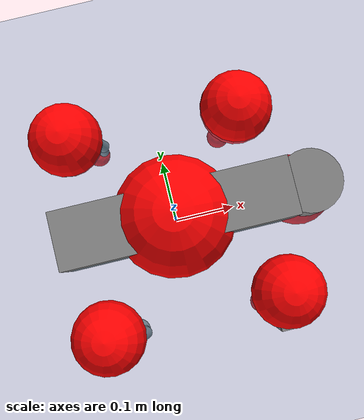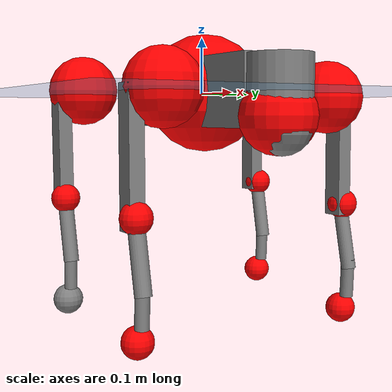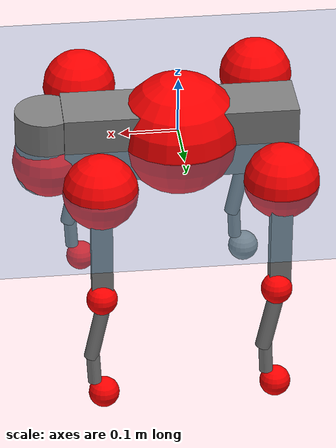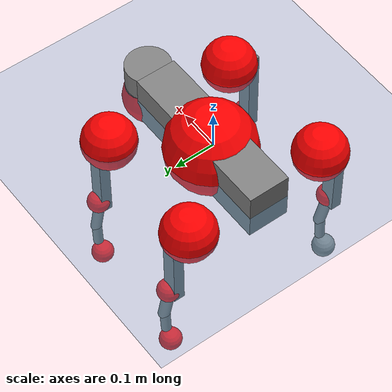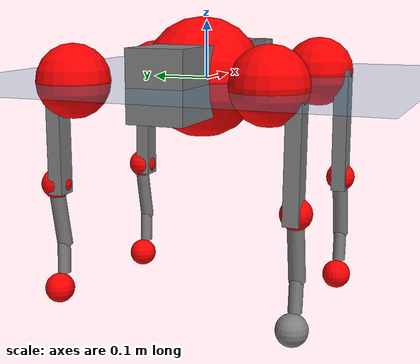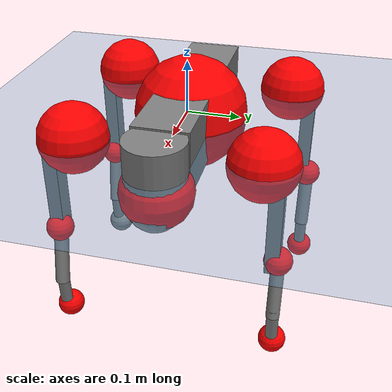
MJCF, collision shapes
<mujoco model="go2">
  <compiler angle="radian" assetdir="assets" balanceinertia="true" inertiafromgeom="false"/>

  <option timestep="0.005" density="1.2" viscosity="2e-05"/>

  <size nkey="1"/>

  <visual>
    <quality shadowsize="8192"/>
    <map shadowclip="0.5"/>
  </visual>

  <default>
    <default class="/">
      <geom contype="0" conaffinity="0" group="1" solref="-1000 -80"/>
      <site size="0.01 0.005 0.005" group="5"/>
      <general forcelimited="true" biastype="affine" gainprm="20" biasprm="0 -20 -0.5"/>
      <default class="go2">
        <joint armature="0.01" damping="0.01" frictionloss="0.2"/>
        <geom condim="1" margin="0.001"/>
        <default class="visual">
          <geom type="mesh" group="2"/>
        </default>
        <default class="collision">
          <geom group="3"/>
          <default class="foot">
            <geom size="0.022 0 0" condim="6" priority="1" friction="0.8 0.02 0.01" solimp="0.015 1 0.022"/>
          </default>
        </default>
        <default class="reward_collision_sphere">
          <geom group="5" rgba="1 0 0 1"/>
        </default>
      </default>
    </default>
  </default>

  <asset>
    <texture type="skybox" colorspace="auto" name="//unnamed_texture_0" builtin="gradient" rgb1="0.95 0.95 0.95" rgb2="0.95 0.95 0.95" width="100" height="600"/>
    <texture type="2d" colorspace="auto" name="texplane" builtin="checker" rgb1="0.345 0.575 0.748" rgb2="0.345 0.575 0.748" markrgb="1 1 1" width="512" height="512"/>
    <material name="MatPlane" class="/" texture="texplane" texuniform="true" texrepeat="2 2" specular="0.9"/>
    <material name="metal" class="/" rgba="0.9 0.95 0.95 1"/>
    <material name="black" class="/" rgba="0 0 0 1"/>
    <material name="white" class="/"/>
    <material name="gray" class="/" rgba="0.671705 0.692426 0.77427 1"/>
    <mesh name="base_0" class="/" file="base_0.obj"/>
    <mesh name="base_1" class="/" file="base_1.obj"/>
    <mesh name="base_2" class="/" file="base_2.obj"/>
    <mesh name="base_3" class="/" file="base_3.obj"/>
    <mesh name="base_4" class="/" file="base_4.obj"/>
    <mesh name="hip_0" class="/" file="hip_0.obj"/>
    <mesh name="hip_1" class="/" file="hip_1.obj"/>
    <mesh name="thigh_0" class="/" file="thigh_0.obj"/>
    <mesh name="thigh_1" class="/" file="thigh_1.obj"/>
    <mesh name="thigh_mirror_0" class="/" file="thigh_mirror_0.obj"/>
    <mesh name="thigh_mirror_1" class="/" file="thigh_mirror_1.obj"/>
    <mesh name="calf_0" class="/" file="calf_0.obj"/>
    <mesh name="calf_1" class="/" file="calf_1.obj"/>
    <mesh name="calf_mirror_0" class="/" file="calf_mirror_0.obj"/>
    <mesh name="calf_mirror_1" class="/" file="calf_mirror_1.obj"/>
    <mesh name="foot" class="/" file="foot.obj"/>
  </asset>

  <worldbody>
    <geom name="floor" class="/" size="100 100 0.125" type="plane" group="0" material="MatPlane"/>
    <light name="toplight_shadow" class="/" pos="0 0 5" dir="0.0990148 0.0990148 -0.990148" type="directional" ambient="0.04 0.04 0.04" diffuse="0.55 0.55 0.55" specular="0.12 0.12 0.12"/>
    <light name="toplight_fill" class="/" pos="0 0 5" dir="0.0990148 0.0990148 -0.990148" type="directional" castshadow="false" ambient="0.04 0.04 0.04" diffuse="0.3 0.3 0.3" specular="0.08 0.08 0.08"/>
    <body name="trunk" childclass="go2" pos="-0.000845164 0.00708967 0.00147815" quat="1 -4.84164e-05 1.5007e-05 1.54138e-05">
      <inertial pos="0.0154792 0.00780536 -0.00529259" quat="-0.00441311 0.67811 -0.0341361 0.734154" mass="8.43691" diaginertia="0.0360212 0.721823 0.0147833"/>
      <joint name="//unnamed_joint_0" type="free" armature="0" damping="0" frictionloss="0"/>
      <geom name="//unnamed_geom_1" class="visual" material="black" mesh="base_0"/>
      <geom name="//unnamed_geom_2" class="visual" material="black" mesh="base_1"/>
      <geom name="//unnamed_geom_3" class="visual" material="black" mesh="base_2"/>
      <geom name="//unnamed_geom_4" class="visual" material="white" mesh="base_3"/>
      <geom name="//unnamed_geom_5" class="visual" material="gray" mesh="base_4"/>
      <geom name="trunk_1" class="collision" size="0.199595 0.049607 0.0604834" type="box"/>
      <geom name="trunk_2" class="collision" size="0.0530556 0.04775" pos="0.226958 0 0.00903574" type="cylinder"/>
      <geom name="trunk_3" class="collision" size="0.0498723" pos="0.233328 0 -0.0542144"/>
      <geom name="//unnamed_geom_9" class="reward_collision_sphere" size="0.106111"/>
      <geom name="//unnamed_geom_10" class="reward_collision_sphere" size="0.0636667" pos="0.222976 0 -0.0406608"/>
      <site name="imu" pos="-0.0541579 -0.0221729 0.073608" size="0.0106111"/>
      <camera name="track" pos="0 -2.96684 0" quat="0.707107 0.707107 0 0" mode="trackcom"/>
      <camera name="ego_camera" pos="0.248459 0 0.0406608" quat="-0.5 -0.5 0.5 0.5"/>
      <body name="FL_hip" pos="0.148469 0.0576789 -0.00927483" quat="0.999993 0.00345691 -0.00124822 -0.000776998">
        <inertial pos="-0.00487614 0.00277076 -0.00392617" quat="0.493265 0.503336 0.507763 0.495499" mass="0.861953" diaginertia="0.000281544 0.00467974 0.000281633"/>
        <joint name="FL_hip_joint" pos="0 0 0" axis="0.999985 -0.0032634 -0.00446788" range="-1.27899 0.967433" armature="0.0100027" damping="0.0426036" frictionloss="0.1518"/>
        <geom name="//unnamed_geom_11" class="visual" material="metal" mesh="hip_0"/>
        <geom name="//unnamed_geom_12" class="visual" material="gray" mesh="hip_1"/>
        <geom name="//unnamed_geom_13" class="collision" size="0.0488112 0.0212222" pos="0 0.118674 0" quat="0.707107 0.707107 0 0" type="cylinder"/>
        <geom name="//unnamed_geom_14" class="reward_collision_sphere" size="0.0636667" pos="0 0.103839 0"/>
        <body name="FL_thigh" pos="0.00196971 0.130323 -0.000310111" quat="0.999995 9.28117e-05 0.00139615 -0.00276777">
          <inertial pos="-0.00913353 -0.0379493 -0.0287942" quat="0.828295 0.0792408 -0.0620949 0.551174" mass="1.37492" diaginertia="0.00198083 0.0427593 0.000549035"/>
          <joint name="FL_thigh_joint" pos="0 0 0" axis="-0.00273712 0.999316 0.0368697" range="-1.63818 3.29657" armature="0.00652351" damping="0.0114852" frictionloss="0.189968"/>
          <geom name="//unnamed_geom_15" class="visual" material="metal" mesh="thigh_0"/>
          <geom name="//unnamed_geom_16" class="visual" material="gray" mesh="thigh_1"/>
          <geom name="//unnamed_geom_17" class="collision" size="0.113008 0.0129986 0.0180389" pos="0 0 -0.0962306" quat="0.707107 0 0.707107 0" type="box"/>
          <body name="FL_calf" pos="0.00128043 0.00954908 -0.190458" quat="0.999998 -0.000353119 -0.00148632 -0.00129099">
            <inertial pos="-0.000426784 -0.00110851 -0.116926" quat="0.711633 0.00476477 -0.00273847 0.70253" mass="0.287726" diaginertia="0.000524321 0.00929786 3.65865e-05"/>
            <joint name="FL_calf_joint" pos="0 0 0" axis="-0.0064464 0.999968 0.00473569" stiffness="0.00090952" range="-2.51076 -0.810931" armature="0.0132876" damping="0.00576969" frictionloss="0.21306"/>
            <geom name="//unnamed_geom_18" class="visual" material="gray" mesh="calf_0"/>
            <geom name="//unnamed_geom_19" class="visual" material="black" mesh="calf_1"/>
            <geom name="FL_calf0" class="collision" size="0.0127333 0.0636667" pos="0.00637074 0 -0.0542144" quat="0.994493 0 -0.104807 0" type="cylinder"/>
            <geom name="//unnamed_geom_21" class="collision" size="0.0116722 0.0344861" pos="0.0159269 0 -0.133729" quat="0.999688 0 0.0249974 0" type="cylinder"/>
            <geom name="//unnamed_geom_22" class="visual" pos="0 0 -0.192461" quat="1 0 0 0" material="black" mesh="foot"/>
            <geom name="FL_foot" class="foot" size="0.0243431" pos="-0.00159269 0 -0.192461"/>
            <geom name="//unnamed_geom_24" class="reward_collision_sphere" size="0.0265278"/>
            <geom name="//unnamed_geom_25" class="reward_collision_sphere" size="0.0265278" pos="-0.00159269 0 -0.192461"/>
            <site name="FL_foot" class="foot" pos="-0.00159269 0 -0.192461" size="0.0106111"/>
          </body>
        </body>
      </body>
      <body name="FR_hip" pos="0.157474 -0.065461 0.0031967" quat="0.999999 0.000963856 -0.00108228 -0.000195591">
        <inertial pos="-0.00228641 -0.00293974 -0.000648282" quat="0.496725 0.511795 0.493698 0.497587" mass="0.914487" diaginertia="0.000293084 0.00500013 0.000267253"/>
        <joint name="FR_hip_joint" pos="0 0 0" axis="0.999613 -0.00774779 0.0266998" stiffness="0.0119514" range="-1.05204 1.00448" armature="0.0101471" damping="0.00313779" frictionloss="0.193042"/>
        <geom name="//unnamed_geom_26" class="visual" pos="0 5.05138e-09 2.16664e-07" quat="4.63268e-05 1 0 0" material="metal" mesh="hip_0"/>
        <geom name="//unnamed_geom_27" class="visual" pos="0 8.18889e-09 -5.35893e-07" quat="4.63268e-05 1 0 0" material="gray" mesh="hip_1"/>
        <geom name="//unnamed_geom_28" class="collision" size="0.0488112 0.0212222" pos="0 -0.118674 0" quat="0.707107 0.707107 0 0" type="cylinder"/>
        <geom name="//unnamed_geom_29" class="reward_collision_sphere" size="0.0636667" pos="0 -0.103839 0"/>
        <body name="FR_thigh" pos="-0.00965673 -0.152798 -0.0104889" quat="0.999998 -0.00104845 -0.00140362 -0.000128317">
          <inertial pos="0.000374967 0.0441778 -0.031105" quat="0.553874 0.00404316 0.083938 0.828349" mass="1.14436" diaginertia="0.00175105 0.0376389 0.000490519"/>
          <joint name="FR_thigh_joint" pos="0 0 0" axis="-0.00155529 -0.999999 9.75399e-05" stiffness="0.00973468" range="-3.29237 1.56686" armature="0.0113348" damping="0.00427164" frictionloss="0.213203"/>
          <geom name="//unnamed_geom_30" class="visual" material="metal" mesh="thigh_mirror_0"/>
          <geom name="//unnamed_geom_31" class="visual" material="gray" mesh="thigh_mirror_1"/>
          <geom name="//unnamed_geom_32" class="collision" size="0.113008 0.0129986 0.0180389" pos="0 0 -0.0962306" quat="0.707107 0 0.707107 0" type="box"/>
          <body name="FR_calf" pos="0.0099715 0.0015987 -0.187391" quat="0.999991 0.00364662 0.00187745 -0.000971056">
            <inertial pos="0.00285345 0.000752924 -0.13366" quat="0.699029 0.0155837 -0.0120889 0.714822" mass="0.292373" diaginertia="0.000473896 0.0105096 3.12956e-05"/>
            <joint name="FR_calf_joint" pos="0 0 0" axis="0.0516002 -0.998518 -0.0172913" stiffness="0.0321584" range="0.854664 2.77094" armature="0.00586997" damping="0" frictionloss="0.300106"/>
            <geom name="//unnamed_geom_33" class="visual" material="gray" mesh="calf_mirror_0"/>
            <geom name="//unnamed_geom_34" class="visual" material="black" mesh="calf_mirror_1"/>
            <geom name="FR_calf0" class="collision" size="0.0137945 0.0636667" pos="0.00796343 0 -0.0542144" quat="0.995004 0 -0.0998334 0" type="cylinder"/>
            <geom name="//unnamed_geom_36" class="collision" size="0.0116722 0.0344861" pos="0.0159269 0 -0.133729" quat="0.999688 0 0.0249974 0" type="cylinder"/>
            <geom name="//unnamed_geom_37" class="visual" pos="0 0 -0.192461" quat="1 0 0 0" material="black" mesh="foot"/>
            <geom name="FR_foot" class="foot" size="0.0247833" pos="-0.00159269 0 -0.192461"/>
            <geom name="//unnamed_geom_39" class="reward_collision_sphere" size="0.0265278"/>
            <geom name="//unnamed_geom_40" class="reward_collision_sphere" size="0.0265278" pos="-0.00159269 0 -0.192461"/>
            <site name="FR_foot" class="foot" pos="-0.00159269 0 -0.192461" size="0.0106111"/>
          </body>
        </body>
      </body>
      <body name="RL_hip" pos="-0.15235 0.0680257 0.000112977" quat="1 -5.38205e-05 -0.000843069 -0.000413318">
        <inertial pos="0.00484188 0.0106689 -0.00433026" quat="0.501822 0.497924 0.500807 0.499439" mass="0.772169" diaginertia="0.000274983 0.00412232 0.000275654"/>
        <joint name="RL_hip_joint" pos="0 0 0" axis="-0.999728 0.00218975 -0.0232087" stiffness="0.00255824" range="-1.05215 1.09938" armature="0.0103759" damping="0.00569371" frictionloss="0.214633"/>
        <geom name="//unnamed_geom_41" class="visual" pos="9.34155e-10 0 1.83116e-07" quat="4.63268e-05 0 1 0" material="metal" mesh="hip_0"/>
        <geom name="//unnamed_geom_42" class="visual" pos="1.51438e-09 0 1.62398e-07" quat="4.63268e-05 0 1 0" material="gray" mesh="hip_1"/>
        <geom name="//unnamed_geom_43" class="collision" size="0.0488112 0.0212222" pos="0 0.118674 0" quat="0.707107 0.707107 0 0" type="cylinder"/>
        <geom name="//unnamed_geom_44" class="reward_collision_sphere" size="0.0636667" pos="0 0.103839 0"/>
        <body name="RL_thigh" pos="0.00524144 0.140673 0.0104874" quat="1 1.36404e-05 -1.2421e-06 -5.40653e-06">
          <inertial pos="-0.00210345 -0.0345375 -0.0195135" quat="0.835834 0.0766463 -0.00115168 0.543605" mass="1.14835" diaginertia="0.00187162 0.0394977 0.000505948"/>
          <joint name="RL_thigh_joint" pos="0 0 0" axis="0.0191257 0.99976 0.0107101" range="-0.383247 4.43651" armature="0.0116815" damping="0.0466936" frictionloss="0.197212"/>
          <geom name="//unnamed_geom_45" class="visual" material="metal" mesh="thigh_0"/>
          <geom name="//unnamed_geom_46" class="visual" material="gray" mesh="thigh_1"/>
          <geom name="//unnamed_geom_47" class="collision" size="0.113008 0.0129986 0.0180389" pos="0 0 -0.0962306" quat="0.707107 0 0.707107 0" type="box"/>
          <body name="RL_calf" pos="0.00576001 0.0113338 -0.193791" quat="1 0.000213622 5.08349e-05 0.00011466">
            <inertial pos="0.00347414 0.00025233 -0.128812" quat="0.714156 0.00756785 -0.000649894 0.699945" mass="0.253999" diaginertia="0.000400299 0.00966053 3.00174e-05"/>
            <joint name="RL_calf_joint" pos="0 0 0" axis="-0.00185117 0.999547 0.030028" stiffness="0.00116591" range="-2.9413 -0.700211" armature="0.0115171" damping="0.0358165" frictionloss="0.196339"/>
            <geom name="//unnamed_geom_48" class="visual" material="gray" mesh="calf_0"/>
            <geom name="//unnamed_geom_49" class="visual" material="black" mesh="calf_1"/>
            <geom name="RL_calf0" class="collision" size="0.0137945 0.0636667" pos="0.00796343 0 -0.0542144" quat="0.995004 0 -0.0998334 0" type="cylinder"/>
            <geom name="//unnamed_geom_51" class="collision" size="0.0116722 0.0344861" pos="0.0159269 0 -0.133729" quat="0.999688 0 0.0249974 0" type="cylinder"/>
            <geom name="//unnamed_geom_52" class="visual" pos="0 0 -0.192461" quat="1 0 0 0" material="black" mesh="foot"/>
            <geom name="RL_foot" class="foot" size="0.0211351" pos="-0.00159269 0 -0.192461"/>
            <geom name="//unnamed_geom_54" class="reward_collision_sphere" size="0.0265278"/>
            <geom name="//unnamed_geom_55" class="reward_collision_sphere" size="0.0265278" pos="-0.00159269 0 -0.192461"/>
            <site name="RL_foot" class="foot" pos="-0.00159269 0 -0.192461" size="0.0106111"/>
          </body>
        </body>
      </body>
      <body name="RR_hip" pos="-0.155742 -0.0700631 0.00569124" quat="0.999991 0.000503909 0.00220749 0.00349436">
        <inertial pos="0.00351616 -0.0110763 0.00541952" quat="0.498408 0.499008 0.497455 0.505093" mass="0.781304" diaginertia="0.000244471 0.00393359 0.000240232"/>
        <joint name="RR_hip_joint" pos="0 0 0" axis="-0.999025 0.02171 0.0384481" range="-1.06943 1.23662" armature="0.0108306" damping="0.0160811" frictionloss="0.226045"/>
        <geom name="//unnamed_geom_56" class="visual" pos="-9.10368e-10 5.05138e-09 -3.35482e-08" quat="2.14617e-09 4.63268e-05 4.63268e-05 -1" material="metal" mesh="hip_0"/>
        <geom name="//unnamed_geom_57" class="visual" pos="-1.57321e-09 8.18889e-09 6.98291e-07" quat="2.14617e-09 4.63268e-05 4.63268e-05 -1" material="gray" mesh="hip_1"/>
        <geom name="//unnamed_geom_58" class="collision" size="0.0488112 0.0212222" pos="0 -0.118674 0" quat="0.707107 0.707107 0 0" type="cylinder"/>
        <geom name="//unnamed_geom_59" class="reward_collision_sphere" size="0.0636667" pos="0 -0.103839 0"/>
        <body name="RR_thigh" pos="-6.21674e-05 -0.147963 -0.00500213" quat="0.99999 0.00427635 -0.000882128 -0.00103869">
          <inertial pos="-0.00349588 0.0423156 -0.0343212" quat="0.551543 -0.0196206 0.0848617 0.829587" mass="1.49125" diaginertia="0.00205824 0.0454569 0.000562826"/>
          <joint name="RR_thigh_joint" pos="0 0 0" axis="-0.0126854 -0.998734 0.0486813" stiffness="0.010553" range="-4.52526 0.437233" armature="0.00971364" damping="0.0183572" frictionloss="0.2166"/>
          <geom name="//unnamed_geom_60" class="visual" material="metal" mesh="thigh_mirror_0"/>
          <geom name="//unnamed_geom_61" class="visual" material="gray" mesh="thigh_mirror_1"/>
          <geom name="//unnamed_geom_62" class="collision" size="0.113008 0.0129986 0.0180389" pos="0 0 -0.0962306" quat="0.707107 0 0.707107 0" type="box"/>
          <body name="RR_calf" pos="0.0121022 -0.000842199 -0.194509" quat="0.999999 0.00110778 -0.00102422 0.000584605">
            <inertial pos="-0.00663451 0.000709444 -0.126898" quat="0.700507 -0.0125913 -0.00482825 0.713518" mass="0.28747" diaginertia="0.00042912 0.0108533 3.26309e-05"/>
            <joint name="RR_calf_joint" pos="0 0 0" axis="0.0460968 -0.998728 0.0204094" stiffness="0.0200762" range="0.998657 2.5299" armature="0.0155795" damping="0" frictionloss="0.226092"/>
            <geom name="//unnamed_geom_63" class="visual" material="gray" mesh="calf_mirror_0"/>
            <geom name="//unnamed_geom_64" class="visual" material="black" mesh="calf_mirror_1"/>
            <geom name="RR_calf0" class="collision" size="0.0137945 0.0636667" pos="0.00796343 0 -0.0542144" quat="0.995004 0 -0.0998334 0" type="cylinder"/>
            <geom name="//unnamed_geom_66" class="collision" size="0.0116722 0.0344861" pos="0.0159269 0 -0.133729" quat="0.999688 0 0.0249974 0" type="cylinder"/>
            <geom name="//unnamed_geom_67" class="visual" pos="0 0 -0.192461" quat="1 0 0 0" material="black" mesh="foot"/>
            <geom name="RR_foot" class="foot" size="0.0274647" pos="-0.00159269 0 -0.192461"/>
            <geom name="//unnamed_geom_69" class="reward_collision_sphere" size="0.0265278"/>
            <geom name="//unnamed_geom_70" class="reward_collision_sphere" size="0.0265278" pos="-0.00159269 0 -0.192461"/>
            <site name="RR_foot" class="foot" pos="-0.00159269 0 -0.192461" size="0.0106111"/>
          </body>
        </body>
      </body>
    </body>
  </worldbody>

  <contact>
    <pair class="/" geom1="floor" geom2="FL_foot" name="//unnamed_contact_0"/>
    <pair class="/" geom1="floor" geom2="FR_foot" name="//unnamed_contact_1"/>
    <pair class="/" geom1="floor" geom2="RL_foot" name="//unnamed_contact_2"/>
    <pair class="/" geom1="floor" geom2="RR_foot" name="//unnamed_contact_3"/>
  </contact>

  <actuator>
    <general name="FL_hip" class="/" joint="FL_hip_joint" forcerange="-14.3605 14.3605" gainprm="16.0437" biasprm="0 -16.0437 -0.504363"/>
    <general name="FL_thigh" class="/" joint="FL_thigh_joint" forcerange="-30.5485 30.5485" gainprm="16.0437" biasprm="0 -16.0437 -0.504363"/>
    <general name="FL_calf" class="/" joint="FL_calf_joint" forcerange="-50.4415 50.4415" gainprm="16.0437" biasprm="0 -16.0437 -0.504363"/>
    <general name="FR_hip" class="/" joint="FR_hip_joint" forcerange="-15.9057 15.9057" gainprm="16.0437" biasprm="0 -16.0437 -0.504363"/>
    <general name="FR_thigh" class="/" joint="FR_thigh_joint" forcerange="-15.8712 15.8712" gainprm="16.0437" biasprm="0 -16.0437 -0.504363"/>
    <general name="FR_calf" class="/" joint="FR_calf_joint" forcerange="-38.0074 38.0074" gainprm="16.0437" biasprm="0 -16.0437 -0.504363"/>
    <general name="RL_hip" class="/" joint="RL_hip_joint" forcerange="-25.4298 25.4298" gainprm="16.0437" biasprm="0 -16.0437 -0.504363"/>
    <general name="RL_thigh" class="/" joint="RL_thigh_joint" forcerange="-26.2588 26.2588" gainprm="16.0437" biasprm="0 -16.0437 -0.504363"/>
    <general name="RL_calf" class="/" joint="RL_calf_joint" forcerange="-56.6244 56.6244" gainprm="16.0437" biasprm="0 -16.0437 -0.504363"/>
    <general name="RR_hip" class="/" joint="RR_hip_joint" forcerange="-35.1346 35.1346" gainprm="16.0437" biasprm="0 -16.0437 -0.504363"/>
    <general name="RR_thigh" class="/" joint="RR_thigh_joint" forcerange="-24.2392 24.2392" gainprm="16.0437" biasprm="0 -16.0437 -0.504363"/>
    <general name="RR_calf" class="/" joint="RR_calf_joint" forcerange="-50.2217 50.2217" gainprm="16.0437" biasprm="0 -16.0437 -0.504363"/>
  </actuator>

  <sensor>
    <gyro site="imu" name="imu_angular_velocity"/>
    <velocimeter site="imu" name="imu_linear_velocity"/>
    <framelinvel objtype="site" objname="FL_foot" name="FL_foot_global_linear_velocity"/>
    <framelinvel objtype="site" objname="FR_foot" name="FR_foot_global_linear_velocity"/>
    <framelinvel objtype="site" objname="RL_foot" name="RL_foot_global_linear_velocity"/>
    <framelinvel objtype="site" objname="RR_foot" name="RR_foot_global_linear_velocity"/>
  </sensor>

  <keyframe>
    <key name="home" qpos="0 0 0.325 1 0 0 0 0.1 0.8 -1.5 -0.1 -0.8 1.5 -0.1 0.8 -1.5 0.1 -0.8 1.5"/>
  </keyframe>
</mujoco>
